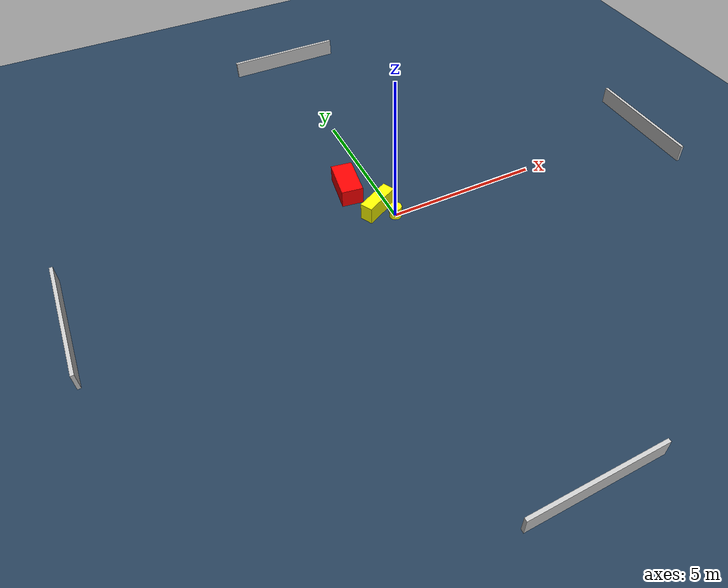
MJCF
<?xml version="1.0" ?>
<mujoco model="generated_environment">
  <option timestep="0.01" integrator="RK4" cone="elliptic"/>
  <default>
    <geom density="1"/>
  </default>
  <asset>
    <texture builtin="gradient" height="3072" name="skybox" rgb1="0.3 0.5 0.7" rgb2="0 0 0" type="skybox" width="512"/>
    <texture builtin="checker" height="300" name="groundplane" rgb1="0.2 0.3 0.4" rgb2="0.1 0.2 0.3" type="2d" width="300"/>
    <material name="groundplane" reflectance="0.2" texrepeat="5 5" texture="groundplane"/>
  </asset>
  <worldbody>
    <light dir="0 0 -1" directional="true" pos="0 0 1.5"/>
    <geom condim="3" friction="0.5 0.005 0.001" material="groundplane" name="floor" pos="0 0 0" size="0 0 0.05" type="plane"/>
    <body name="walls">
      <geom name="wall_1" condim="4" pos="-10.0 0.0 0.3" rgba="0.800000011920929 0.800000011920929 0.800000011920929 1.0" size="0.05 2.0 0.3" type="box"/>
      <geom name="wall_2" condim="4" pos="10.0 0.0 0.3" rgba="0.800000011920929 0.800000011920929 0.800000011920929 1.0" size="0.05 2.0 0.3" type="box"/>
      <geom name="wall_3" condim="4" pos="0.0 -10.0 0.3" rgba="0.800000011920929 0.800000011920929 0.800000011920929 1.0" size="2.0 0.05 0.3" type="box"/>
      <geom name="wall_4" condim="4" pos="0.0 10.0 0.3" rgba="0.800000011920929 0.800000011920929 0.800000011920929 1.0" size="2.0 0.05 0.3" type="box"/>
    </body>
    <body name="robot">
      <joint name="joint_x" type="slide" pos="0 0 0" axis="1 0 0"/>
      <joint name="joint_y" type="slide" pos="0 0 0" axis="0 1 0"/>
      <geom name="robot" type="cylinder" pos="0.0 0.0 0.2" size="0.2 0.2 0.0" mass="5.0" friction="1.0 0.005 0.0001" condim="4" rgba="1.0 1.0 0.0 1.0"/>
    </body>
    <body name="obstacle_1_movable">
      <geom name="obstacle_1_movable" condim="4" pos="-0.3959704757142669 0.47105531229915293 0.3" euler="0 0 27.47452165649741" friction="0.0 0.005 0.001" rgba="1.0 1.0 0.0 1.0" size="0.6042791901303317 0.20747088458967602 0.3" type="box" mass="0.1"/>
      <joint type="free"/>
    </body>
    <body name="obstacle_2_static">
      <geom name="obstacle_2_static" condim="4" pos="-0.8933351938413608 1.7525835545011124 0.3" euler="0 0 261.72436767130245" friction="0.0 0.005 0.001" rgba="1.0 0.0 0.0 1.0" size="0.6796528441471137 0.3530895908224373 0.3" type="box"/>
    </body>
  </worldbody>
  <actuator>
    <motor name="actuator_x" joint="joint_x" gear="1" ctrlrange="-1 1"/>
    <motor name="actuator_y" joint="joint_y" gear="1" ctrlrange="-1 1"/>
  </actuator>
</mujoco>
